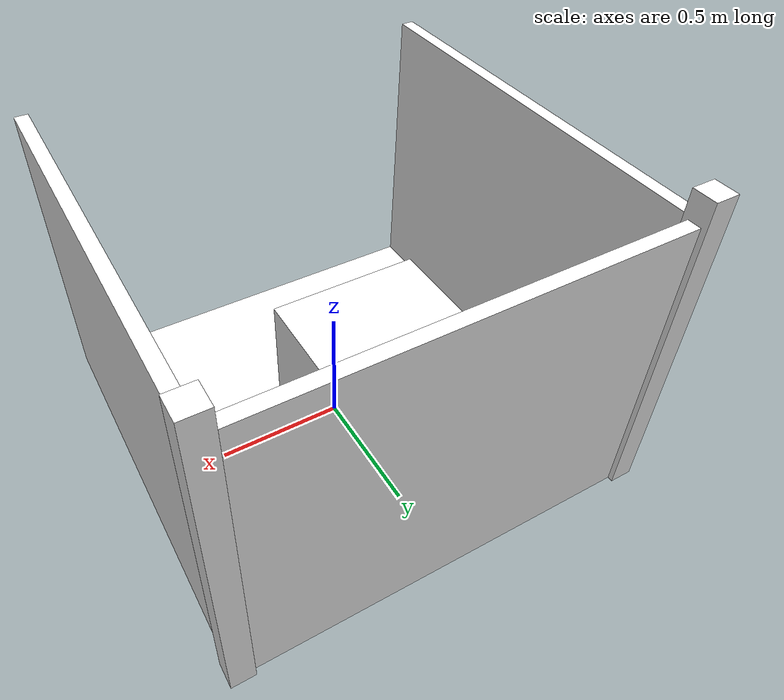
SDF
<?xml version="1.0"?>
<sdf version="1.10">
  <model name="robot_cell">
    <static>true</static>
      <link name="body">
        <collision name="mat_col"><pose>0 0 0.01 0 0 0</pose>
          <geometry><box><size>1.60 1.60 0.02</size></box></geometry></collision>
        <visual name="mat_vis"><pose>0 0 0.01 0 0 0</pose>
          <geometry><box><size>1.60 1.60 0.02</size></box></geometry>
          <material>
          <diffuse>1 1 1 1</diffuse>
          <specular>0.15 0.15 0.15 1</specular>
          <pbr><metal>
            <albedo_map>model://slam_assets/materials/textures/rubber_mat.png</albedo_map>
            <roughness>0.85</roughness><metalness>0.0</metalness>
          </metal></pbr>
        </material>
        </visual>
        <collision name="fenceN_col"><pose>0 0.8 0.60 0 0 0</pose>
          <geometry><box><size>1.60 0.05 1.20</size></box></geometry></collision>
        <visual name="fenceN_vis"><pose>0 0.8 0.60 0 0 0</pose>
          <geometry><box><size>1.60 0.05 1.20</size></box></geometry>
          <material>
          <diffuse>1 1 1 1</diffuse>
          <specular>0.15 0.15 0.15 1</specular>
          <pbr><metal>
            <albedo_map>model://slam_assets/materials/textures/fence_mesh.png</albedo_map>
            <roughness>0.85</roughness><metalness>0.0</metalness>
          </metal></pbr>
        </material>
        </visual>
        <collision name="fenceW_col"><pose>-0.8 0 0.60 0 0 0</pose>
          <geometry><box><size>0.05 1.60 1.20</size></box></geometry></collision>
        <visual name="fenceW_vis"><pose>-0.8 0 0.60 0 0 0</pose>
          <geometry><box><size>0.05 1.60 1.20</size></box></geometry>
          <material>
          <diffuse>1 1 1 1</diffuse>
          <specular>0.15 0.15 0.15 1</specular>
          <pbr><metal>
            <albedo_map>model://slam_assets/materials/textures/fence_mesh.png</albedo_map>
            <roughness>0.85</roughness><metalness>0.0</metalness>
          </metal></pbr>
        </material>
        </visual>
        <collision name="fenceE_col"><pose>0.8 0 0.60 0 0 0</pose>
          <geometry><box><size>0.05 1.60 1.20</size></box></geometry></collision>
        <visual name="fenceE_vis"><pose>0.8 0 0.60 0 0 0</pose>
          <geometry><box><size>0.05 1.60 1.20</size></box></geometry>
          <material>
          <diffuse>1 1 1 1</diffuse>
          <specular>0.15 0.15 0.15 1</specular>
          <pbr><metal>
            <albedo_map>model://slam_assets/materials/textures/fence_mesh.png</albedo_map>
            <roughness>0.85</roughness><metalness>0.0</metalness>
          </metal></pbr>
        </material>
        </visual>
        <collision name="postA_col"><pose>-0.8 0.8 0.65 0 0 0</pose>
          <geometry><box><size>0.09 0.09 1.30</size></box></geometry></collision>
        <visual name="postA_vis"><pose>-0.8 0.8 0.65 0 0 0</pose>
          <geometry><box><size>0.09 0.09 1.30</size></box></geometry>
          <material>
          <diffuse>1 1 1 1</diffuse>
          <specular>0.15 0.15 0.15 1</specular>
          <pbr><metal>
            <albedo_map>model://slam_assets/materials/textures/metal_panel.png</albedo_map>
            <roughness>0.85</roughness><metalness>0.0</metalness>
          </metal></pbr>
        </material>
        </visual>
        <collision name="postB_col"><pose>0.8 0.8 0.65 0 0 0</pose>
          <geometry><box><size>0.09 0.09 1.30</size></box></geometry></collision>
        <visual name="postB_vis"><pose>0.8 0.8 0.65 0 0 0</pose>
          <geometry><box><size>0.09 0.09 1.30</size></box></geometry>
          <material>
          <diffuse>1 1 1 1</diffuse>
          <specular>0.15 0.15 0.15 1</specular>
          <pbr><metal>
            <albedo_map>model://slam_assets/materials/textures/metal_panel.png</albedo_map>
            <roughness>0.85</roughness><metalness>0.0</metalness>
          </metal></pbr>
        </material>
        </visual>
        <collision name="rig_col"><pose>0 0.35 0.375 0 0 0</pose>
          <geometry><box><size>0.55 0.55 0.75</size></box></geometry></collision>
        <visual name="rig_vis"><pose>0 0.35 0.375 0 0 0</pose>
          <geometry><box><size>0.55 0.55 0.75</size></box></geometry>
          <material>
          <diffuse>1 1 1 1</diffuse>
          <specular>0.15 0.15 0.15 1</specular>
          <pbr><metal>
            <albedo_map>model://slam_assets/materials/textures/machine_skin.png</albedo_map>
            <roughness>0.85</roughness><metalness>0.0</metalness>
          </metal></pbr>
        </material>
        </visual>
      </link>
  </model>
</sdf>
